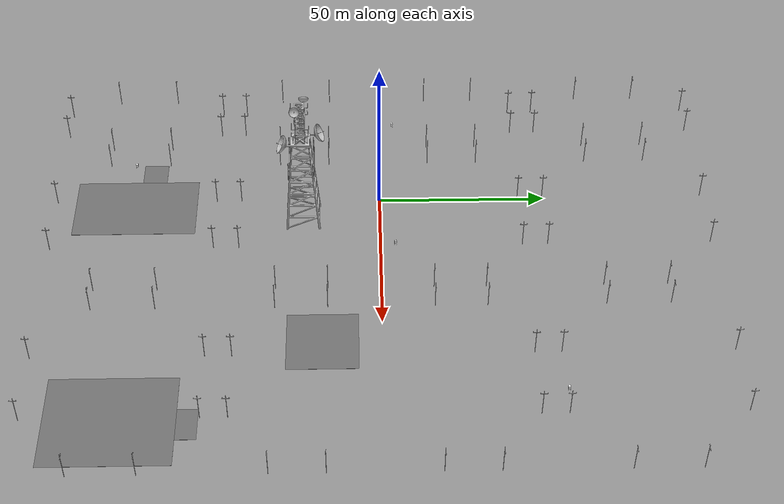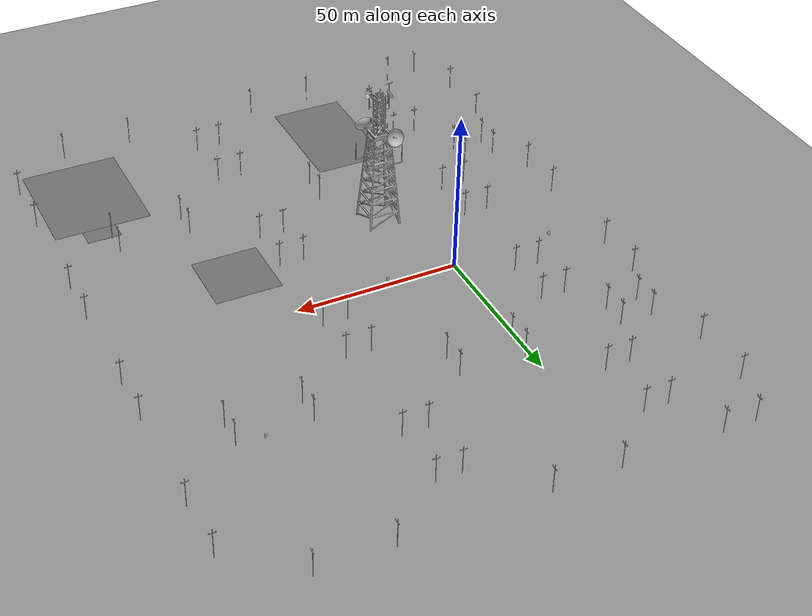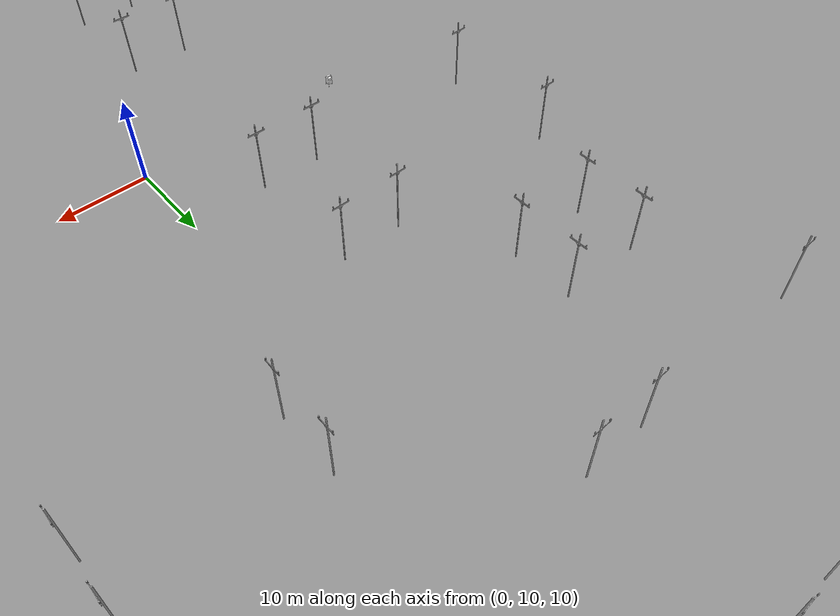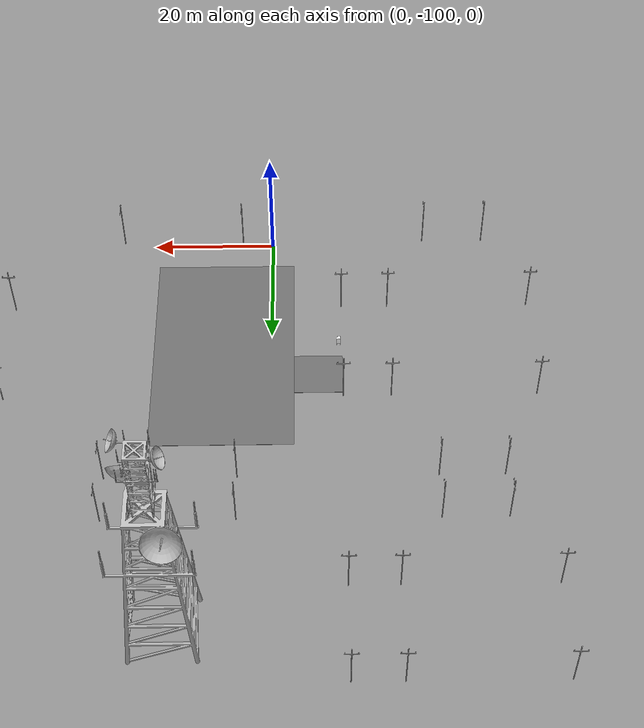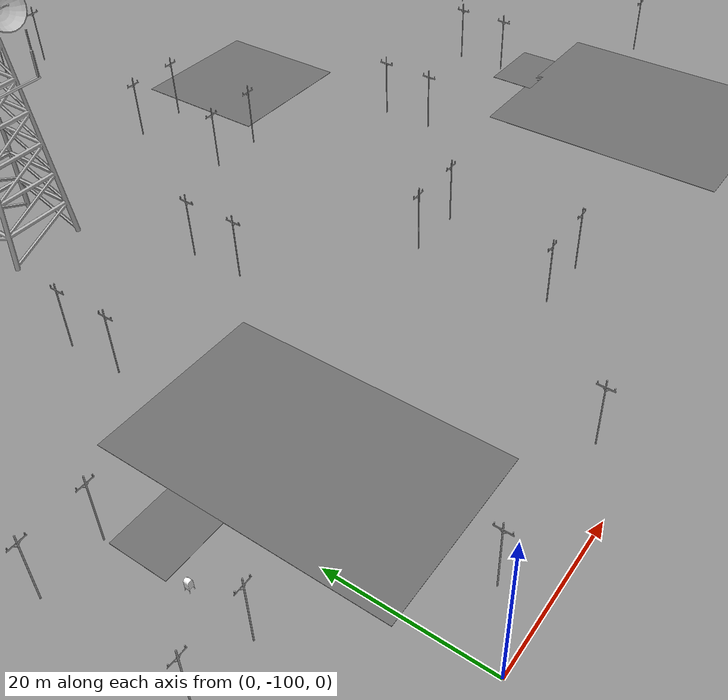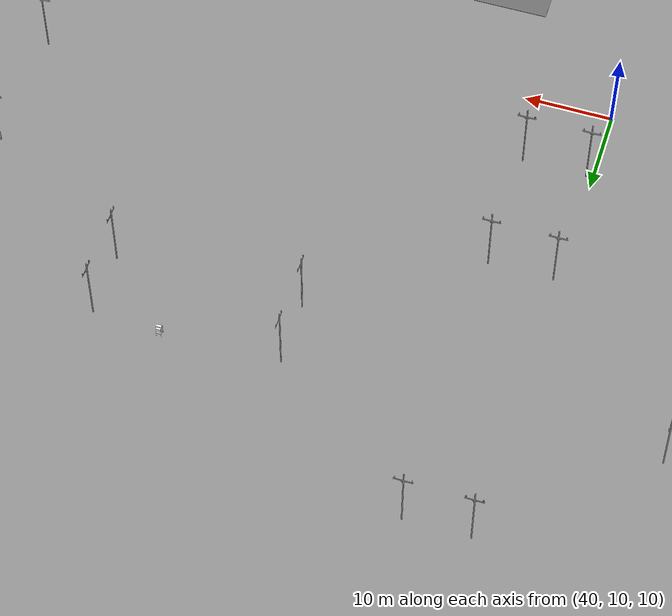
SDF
<sdf version="1.6">
 <world name="large_city">
  <plugin filename="gz-sim-physics-system" name="gz::sim::systems::Physics"/>
  <plugin filename="gz-sim-user-commands-system" name="gz::sim::systems::UserCommands"/>
  <plugin filename="gz-sim-scene-broadcaster-system" name="gz::sim::systems::SceneBroadcaster"/>
  <plugin filename="gz-sim-sensors-system" name="gz::sim::systems::Sensors">
   <render_engine>ogre2</render_engine>
  </plugin>
  <plugin filename="gz-sim-imu-system" name="gz::sim::systems::Imu"/>
  <scene>
   <grid>false</grid>
   <origin_visual>false</origin_visual>
   <ambient>0.46 0.47 0.48 1</ambient>
   <sky><clouds><speed>12</speed></clouds></sky>
   <background>0.64 0.70 0.76 1.0</background>
  </scene>
  <physics name="default_physics" default="0" type="ode">
   <max_step_size>0.002</max_step_size>
   <real_time_factor>1</real_time_factor>
   <real_time_update_rate>0</real_time_update_rate>
  </physics>
  <spherical_coordinates>
   <surface_model>EARTH_WGS84</surface_model>
   <latitude_deg>56.164520029</latitude_deg>
   <longitude_deg>10.1453534275</longitude_deg>
   <elevation>100.0</elevation>
   <heading_deg>0.0</heading_deg>
  </spherical_coordinates>
  <light type="directional" name="sun">
   <pose>0 0 1000 0 0 0</pose>
   <diffuse>0.92 0.90 0.84 1</diffuse>
   <specular>0.35 0.34 0.30 1</specular>
   <attenuation>
    <range>1000</range>
    <constant>0.9</constant>
    <linear>0.01</linear>
    <quadratic>0.001</quadratic>
   </attenuation>
   <direction>-0.42 0.16 -0.89</direction>
  </light>
  <model name="shaderbox">
   <pose>0 0 -5 0 0 0</pose>
   <static>true</static>
   <link name="link">
    <visual name="visual">
     <geometry><box><size>0.1 0.1 0.1</size></box></geometry>
     <material>
      <ambient>0.55 0.55 0.55 1.0</ambient>
      <diffuse>0.55 0.55 0.55 1.0</diffuse>
      <specular>0.12 0.12 0.12 1.0</specular>
     </material>
    </visual>
   </link>
  </model>
  <include>
   <static>true</static>
   <name>city_terrain_1</name>
   <pose>0
      0
      5.01
      0
      0
      0</pose>
   <uri>model://city_terrain</uri>
  </include>
  <include>
   <static>true</static>
   <name>postbox_129</name>
   <pose>80
      49.34
      5.16
      0
      0
      3.14</pose>
   <uri>model://postbox</uri>
  </include>
  <model name="asphalt_plane_138">
   <static>true</static>
   <pose>61.581
    -16.664
    5.01
    0
    0
    0</pose>
   <link name="link">
    <collision name="collision">
     <geometry><box><size>20
            20
            0.1</size></box></geometry>
    </collision>
    <visual name="visual">
     <geometry><box><size>20
            20
            0.05</size></box></geometry>
     <material>
      <ambient>0.42 0.42 0.42 1.0</ambient>
      <diffuse>0.42 0.42 0.42 1.0</diffuse>
      <specular>0.12 0.12 0.12 1.0</specular>
      <pbr>
       <metal>
        <albedo_map>model://asphalt_plane/materials/textures/tarmac.png</albedo_map>
        <roughness>0.85</roughness>
        <metalness>0.0</metalness>
       </metal>
      </pbr>
     </material>
    </visual>
   </link>
  </model>
  <model name="asphalt_plane_148">
   <static>true</static>
   <pose>88.62
    -72.49
    5.01
    0
    0
    0</pose>
   <link name="link">
    <collision name="collision">
     <geometry><box><size>29.378
            35.24
            0.1</size></box></geometry>
    </collision>
    <visual name="visual">
     <geometry><box><size>29.378
            35.24
            0.05</size></box></geometry>
     <material>
      <ambient>0.42 0.42 0.42 1.0</ambient>
      <diffuse>0.42 0.42 0.42 1.0</diffuse>
      <specular>0.12 0.12 0.12 1.0</specular>
      <pbr>
       <metal>
        <albedo_map>model://asphalt_plane/materials/textures/tarmac.png</albedo_map>
        <roughness>0.85</roughness>
        <metalness>0.0</metalness>
       </metal>
      </pbr>
     </material>
    </visual>
   </link>
  </model>
  <model name="asphalt_plane_149">
   <static>true</static>
   <pose>90.0
    -52.48
    5.01
    0
    0
    0</pose>
   <link name="link">
    <collision name="collision">
     <geometry><box><size>10.15
            6.61
            0.1</size></box></geometry>
    </collision>
    <visual name="visual">
     <geometry><box><size>10.15
            6.61
            0.05</size></box></geometry>
     <material>
      <ambient>0.42 0.42 0.42 1.0</ambient>
      <diffuse>0.42 0.42 0.42 1.0</diffuse>
      <specular>0.12 0.12 0.12 1.0</specular>
      <pbr>
       <metal>
        <albedo_map>model://asphalt_plane/materials/textures/tarmac.png</albedo_map>
        <roughness>0.85</roughness>
        <metalness>0.0</metalness>
       </metal>
      </pbr>
     </material>
    </visual>
   </link>
  </model>
  <include>
   <static>true</static>
   <name>postbox_269</name>
   <pose>24.0
      4.33
      5.16
      0
      0
      3.14</pose>
   <uri>model://postbox</uri>
  </include>
  <include>
   <static>true</static>
   <name>radio_tower_301</name>
   <pose>14.0
      -22.5
      6.5896564799999995
      0
      0
      0</pose>
   <uri>model://radio_tower</uri>
  </include>
  <model name="asphalt_plane_321">
   <static>true</static>
   <pose>7.4
    -72.69
    5.01
    0
    0
    0</pose>
   <link name="link">
    <collision name="collision">
     <geometry><box><size>22.248
            36.24
            0.1</size></box></geometry>
    </collision>
    <visual name="visual">
     <geometry><box><size>22.248
            36.24
            0.05</size></box></geometry>
     <material>
      <ambient>0.42 0.42 0.42 1.0</ambient>
      <diffuse>0.42 0.42 0.42 1.0</diffuse>
      <specular>0.12 0.12 0.12 1.0</specular>
      <pbr>
       <metal>
        <albedo_map>model://asphalt_plane/materials/textures/tarmac.png</albedo_map>
        <roughness>0.85</roughness>
        <metalness>0.0</metalness>
       </metal>
      </pbr>
     </material>
    </visual>
   </link>
  </model>
  <model name="asphalt_plane_322">
   <static>true</static>
   <pose>-7.51
    -67.99
    5.01
    0
    0
    0</pose>
   <link name="link">
    <collision name="collision">
     <geometry><box><size>7.63
            7.24
            0.1</size></box></geometry>
    </collision>
    <visual name="visual">
     <geometry><box><size>7.63
            7.24
            0.05</size></box></geometry>
     <material>
      <ambient>0.42 0.42 0.42 1.0</ambient>
      <diffuse>0.42 0.42 0.42 1.0</diffuse>
      <specular>0.12 0.12 0.12 1.0</specular>
      <pbr>
       <metal>
        <albedo_map>model://asphalt_plane/materials/textures/tarmac.png</albedo_map>
        <roughness>0.85</roughness>
        <metalness>0.0</metalness>
       </metal>
      </pbr>
     </material>
    </visual>
   </link>
  </model>
  <include>
   <static>true</static>
   <name>postbox_403</name>
   <pose>-10.76
      -74.02
      5.16
      0
      0
      1.57</pose>
   <uri>model://postbox</uri>
  </include>
  <include>
   <static>true</static>
   <name>postbox_409</name>
   <pose>-28.58
      4.33
      5.16
      0
      0
      3.14</pose>
   <uri>model://postbox</uri>
  </include>
  <include>
   <static>true</static>
   <name>telephone_pole_510</name>
   <pose>-41.3
      -81.85
      5.01
      0
      0
      3.14</pose>
   <uri>model://telephone_pole</uri>
  </include>
  <include>
   <static>true</static>
   <name>telephone_pole_511</name>
   <pose>-41.3
      -63.699999999999996
      5.01
      0
      0
      3.14</pose>
   <uri>model://telephone_pole</uri>
  </include>
  <include>
   <static>true</static>
   <name>telephone_pole_512</name>
   <pose>-11.3
      -81.85
      5.01
      0
      0
      3.14</pose>
   <uri>model://telephone_pole</uri>
  </include>
  <include>
   <static>true</static>
   <name>telephone_pole_513</name>
   <pose>-11.3
      -63.699999999999996
      5.01
      0
      0
      3.14</pose>
   <uri>model://telephone_pole</uri>
  </include>
  <include>
   <static>true</static>
   <name>telephone_pole_514</name>
   <pose>-18.7
      -81.85
      5.01
      0
      0
      3.14</pose>
   <uri>model://telephone_pole</uri>
  </include>
  <include>
   <static>true</static>
   <name>telephone_pole_515</name>
   <pose>-18.7
      -63.699999999999996
      5.01
      0
      0
      3.14</pose>
   <uri>model://telephone_pole</uri>
  </include>
  <include>
   <static>true</static>
   <name>telephone_pole_516</name>
   <pose>48.7
      -81.85
      5.01
      0
      0
      3.14</pose>
   <uri>model://telephone_pole</uri>
  </include>
  <include>
   <static>true</static>
   <name>telephone_pole_517</name>
   <pose>48.7
      -63.699999999999996
      5.01
      0
      0
      3.14</pose>
   <uri>model://telephone_pole</uri>
  </include>
  <include>
   <static>true</static>
   <name>telephone_pole_518</name>
   <pose>41.3
      -81.85
      5.01
      0
      0
      3.14</pose>
   <uri>model://telephone_pole</uri>
  </include>
  <include>
   <static>true</static>
   <name>telephone_pole_519</name>
   <pose>41.3
      -63.699999999999996
      5.01
      0
      0
      3.14</pose>
   <uri>model://telephone_pole</uri>
  </include>
  <include>
   <static>true</static>
   <name>telephone_pole_520</name>
   <pose>106.3
      -81.85
      5.01
      0
      0
      3.14</pose>
   <uri>model://telephone_pole</uri>
  </include>
  <include>
   <static>true</static>
   <name>telephone_pole_521</name>
   <pose>106.3
      -63.699999999999996
      5.01
      0
      0
      3.14</pose>
   <uri>model://telephone_pole</uri>
  </include>
  <include>
   <static>true</static>
   <name>telephone_pole_522</name>
   <pose>-41.3
      -30.15
      5.01
      0
      0
      3.14</pose>
   <uri>model://telephone_pole</uri>
  </include>
  <include>
   <static>true</static>
   <name>telephone_pole_523</name>
   <pose>-41.3
      -15.299999999999997
      5.01
      0
      0
      3.14</pose>
   <uri>model://telephone_pole</uri>
  </include>
  <include>
   <static>true</static>
   <name>telephone_pole_524</name>
   <pose>-11.3
      -30.15
      5.01
      0
      0
      3.14</pose>
   <uri>model://telephone_pole</uri>
  </include>
  <include>
   <static>true</static>
   <name>telephone_pole_525</name>
   <pose>-11.3
      -15.299999999999997
      5.01
      0
      0
      3.14</pose>
   <uri>model://telephone_pole</uri>
  </include>
  <include>
   <static>true</static>
   <name>telephone_pole_526</name>
   <pose>-18.7
      -30.15
      5.01
      0
      0
      3.14</pose>
   <uri>model://telephone_pole</uri>
  </include>
  <include>
   <static>true</static>
   <name>telephone_pole_527</name>
   <pose>-18.7
      -15.299999999999997
      5.01
      0
      0
      3.14</pose>
   <uri>model://telephone_pole</uri>
  </include>
  <include>
   <static>true</static>
   <name>telephone_pole_528</name>
   <pose>48.7
      -30.15
      5.01
      0
      0
      3.14</pose>
   <uri>model://telephone_pole</uri>
  </include>
  <include>
   <static>true</static>
   <name>telephone_pole_529</name>
   <pose>48.7
      -15.299999999999997
      5.01
      0
      0
      3.14</pose>
   <uri>model://telephone_pole</uri>
  </include>
  <include>
   <static>true</static>
   <name>telephone_pole_530</name>
   <pose>41.3
      -30.15
      5.01
      0
      0
      3.14</pose>
   <uri>model://telephone_pole</uri>
  </include>
  <include>
   <static>true</static>
   <name>telephone_pole_531</name>
   <pose>41.3
      -15.299999999999997
      5.01
      0
      0
      3.14</pose>
   <uri>model://telephone_pole</uri>
  </include>
  <include>
   <static>true</static>
   <name>telephone_pole_532</name>
   <pose>106.3
      -30.15
      5.01
      0
      0
      3.14</pose>
   <uri>model://telephone_pole</uri>
  </include>
  <include>
   <static>true</static>
   <name>telephone_pole_533</name>
   <pose>106.3
      -15.299999999999997
      5.01
      0
      0
      3.14</pose>
   <uri>model://telephone_pole</uri>
  </include>
  <include>
   <static>true</static>
   <name>telephone_pole_534</name>
   <pose>-41.3
      14.850000000000001
      5.01
      0
      0
      3.14</pose>
   <uri>model://telephone_pole</uri>
  </include>
  <include>
   <static>true</static>
   <name>telephone_pole_535</name>
   <pose>-41.3
      29.700000000000003
      5.01
      0
      0
      3.14</pose>
   <uri>model://telephone_pole</uri>
  </include>
  <include>
   <static>true</static>
   <name>telephone_pole_536</name>
   <pose>-11.3
      14.850000000000001
      5.01
      0
      0
      3.14</pose>
   <uri>model://telephone_pole</uri>
  </include>
  <include>
   <static>true</static>
   <name>telephone_pole_537</name>
   <pose>-11.3
      29.700000000000003
      5.01
      0
      0
      3.14</pose>
   <uri>model://telephone_pole</uri>
  </include>
  <include>
   <static>true</static>
   <name>telephone_pole_538</name>
   <pose>-18.7
      14.850000000000001
      5.01
      0
      0
      3.14</pose>
   <uri>model://telephone_pole</uri>
  </include>
  <include>
   <static>true</static>
   <name>telephone_pole_539</name>
   <pose>-18.7
      29.700000000000003
      5.01
      0
      0
      3.14</pose>
   <uri>model://telephone_pole</uri>
  </include>
  <include>
   <static>true</static>
   <name>telephone_pole_540</name>
   <pose>48.7
      14.850000000000001
      5.01
      0
      0
      3.14</pose>
   <uri>model://telephone_pole</uri>
  </include>
  <include>
   <static>true</static>
   <name>telephone_pole_541</name>
   <pose>48.7
      29.700000000000003
      5.01
      0
      0
      3.14</pose>
   <uri>model://telephone_pole</uri>
  </include>
  <include>
   <static>true</static>
   <name>telephone_pole_542</name>
   <pose>41.3
      14.850000000000001
      5.01
      0
      0
      3.14</pose>
   <uri>model://telephone_pole</uri>
  </include>
  <include>
   <static>true</static>
   <name>telephone_pole_543</name>
   <pose>41.3
      29.700000000000003
      5.01
      0
      0
      3.14</pose>
   <uri>model://telephone_pole</uri>
  </include>
  <include>
   <static>true</static>
   <name>telephone_pole_544</name>
   <pose>106.3
      14.850000000000001
      5.01
      0
      0
      3.14</pose>
   <uri>model://telephone_pole</uri>
  </include>
  <include>
   <static>true</static>
   <name>telephone_pole_545</name>
   <pose>106.3
      29.700000000000003
      5.01
      0
      0
      3.14</pose>
   <uri>model://telephone_pole</uri>
  </include>
  <include>
   <static>true</static>
   <name>telephone_pole_546</name>
   <pose>-41.3
      63.150000000000006
      5.01
      0
      0
      3.14</pose>
   <uri>model://telephone_pole</uri>
  </include>
  <include>
   <static>true</static>
   <name>telephone_pole_547</name>
   <pose>-41.3
      81.30000000000001
      5.01
      0
      0
      3.14</pose>
   <uri>model://telephone_pole</uri>
  </include>
  <include>
   <static>true</static>
   <name>telephone_pole_548</name>
   <pose>-11.3
      63.150000000000006
      5.01
      0
      0
      3.14</pose>
   <uri>model://telephone_pole</uri>
  </include>
  <include>
   <static>true</static>
   <name>telephone_pole_549</name>
   <pose>-11.3
      81.30000000000001
      5.01
      0
      0
      3.14</pose>
   <uri>model://telephone_pole</uri>
  </include>
  <include>
   <static>true</static>
   <name>telephone_pole_550</name>
   <pose>-18.7
      63.150000000000006
      5.01
      0
      0
      3.14</pose>
   <uri>model://telephone_pole</uri>
  </include>
  <include>
   <static>true</static>
   <name>telephone_pole_551</name>
   <pose>-18.7
      81.30000000000001
      5.01
      0
      0
      3.14</pose>
   <uri>model://telephone_pole</uri>
  </include>
  <include>
   <static>true</static>
   <name>telephone_pole_552</name>
   <pose>48.7
      63.150000000000006
      5.01
      0
      0
      3.14</pose>
   <uri>model://telephone_pole</uri>
  </include>
  <include>
   <static>true</static>
   <name>telephone_pole_553</name>
   <pose>48.7
      81.30000000000001
      5.01
      0
      0
      3.14</pose>
   <uri>model://telephone_pole</uri>
  </include>
  <include>
   <static>true</static>
   <name>telephone_pole_554</name>
   <pose>41.3
      63.150000000000006
      5.01
      0
      0
      3.14</pose>
   <uri>model://telephone_pole</uri>
  </include>
  <include>
   <static>true</static>
   <name>telephone_pole_555</name>
   <pose>41.3
      81.30000000000001
      5.01
      0
      0
      3.14</pose>
   <uri>model://telephone_pole</uri>
  </include>
  <include>
   <static>true</static>
   <name>telephone_pole_556</name>
   <pose>106.3
      63.150000000000006
      5.01
      0
      0
      3.14</pose>
   <uri>model://telephone_pole</uri>
  </include>
  <include>
   <static>true</static>
   <name>telephone_pole_557</name>
   <pose>106.3
      81.30000000000001
      5.01
      0
      0
      3.14</pose>
   <uri>model://telephone_pole</uri>
  </include>
  <include>
   <static>true</static>
   <name>telephone_pole_558</name>
   <pose>-35.1
      -96.3
      5.01
      0
      0
      1.57</pose>
   <uri>model://telephone_pole</uri>
  </include>
  <include>
   <static>true</static>
   <name>telephone_pole_559</name>
   <pose>-25.2
      -96.3
      5.01
      0
      0
      1.57</pose>
   <uri>model://telephone_pole</uri>
  </include>
  <include>
   <static>true</static>
   <name>telephone_pole_560</name>
   <pose>-35.1
      -41.3
      5.01
      0
      0
      1.57</pose>
   <uri>model://telephone_pole</uri>
  </include>
  <include>
   <static>true</static>
   <name>telephone_pole_561</name>
   <pose>-25.2
      -41.3
      5.01
      0
      0
      1.57</pose>
   <uri>model://telephone_pole</uri>
  </include>
  <include>
   <static>true</static>
   <name>telephone_pole_562</name>
   <pose>-35.1
      -48.7
      5.01
      0
      0
      1.57</pose>
   <uri>model://telephone_pole</uri>
  </include>
  <include>
   <static>true</static>
   <name>telephone_pole_563</name>
   <pose>-25.2
      -48.7
      5.01
      0
      0
      1.57</pose>
   <uri>model://telephone_pole</uri>
  </include>
  <include>
   <static>true</static>
   <name>telephone_pole_564</name>
   <pose>-35.1
      48.7
      5.01
      0
      0
      1.57</pose>
   <uri>model://telephone_pole</uri>
  </include>
  <include>
   <static>true</static>
   <name>telephone_pole_565</name>
   <pose>-25.2
      48.7
      5.01
      0
      0
      1.57</pose>
   <uri>model://telephone_pole</uri>
  </include>
  <include>
   <static>true</static>
   <name>telephone_pole_566</name>
   <pose>-35.1
      41.3
      5.01
      0
      0
      1.57</pose>
   <uri>model://telephone_pole</uri>
  </include>
  <include>
   <static>true</static>
   <name>telephone_pole_567</name>
   <pose>-25.2
      41.3
      5.01
      0
      0
      1.57</pose>
   <uri>model://telephone_pole</uri>
  </include>
  <include>
   <static>true</static>
   <name>telephone_pole_568</name>
   <pose>-35.1
      96.3
      5.01
      0
      0
      1.57</pose>
   <uri>model://telephone_pole</uri>
  </include>
  <include>
   <static>true</static>
   <name>telephone_pole_569</name>
   <pose>-25.2
      96.3
      5.01
      0
      0
      1.57</pose>
   <uri>model://telephone_pole</uri>
  </include>
  <include>
   <static>true</static>
   <name>telephone_pole_570</name>
   <pose>4.800000000000001
      -96.3
      5.01
      0
      0
      1.57</pose>
   <uri>model://telephone_pole</uri>
  </include>
  <include>
   <static>true</static>
   <name>telephone_pole_571</name>
   <pose>24.6
      -96.3
      5.01
      0
      0
      1.57</pose>
   <uri>model://telephone_pole</uri>
  </include>
  <include>
   <static>true</static>
   <name>telephone_pole_572</name>
   <pose>4.800000000000001
      -41.3
      5.01
      0
      0
      1.57</pose>
   <uri>model://telephone_pole</uri>
  </include>
  <include>
   <static>true</static>
   <name>telephone_pole_573</name>
   <pose>24.6
      -41.3
      5.01
      0
      0
      1.57</pose>
   <uri>model://telephone_pole</uri>
  </include>
  <include>
   <static>true</static>
   <name>telephone_pole_574</name>
   <pose>4.800000000000001
      -48.7
      5.01
      0
      0
      1.57</pose>
   <uri>model://telephone_pole</uri>
  </include>
  <include>
   <static>true</static>
   <name>telephone_pole_575</name>
   <pose>24.6
      -48.7
      5.01
      0
      0
      1.57</pose>
   <uri>model://telephone_pole</uri>
  </include>
  <include>
   <static>true</static>
   <name>telephone_pole_576</name>
   <pose>4.800000000000001
      48.7
      5.01
      0
      0
      1.57</pose>
   <uri>model://telephone_pole</uri>
  </include>
  <include>
   <static>true</static>
   <name>telephone_pole_577</name>
   <pose>24.6
      48.7
      5.01
      0
      0
      1.57</pose>
   <uri>model://telephone_pole</uri>
  </include>
  <include>
   <static>true</static>
   <name>telephone_pole_578</name>
   <pose>4.800000000000001
      41.3
      5.01
      0
      0
      1.57</pose>
   <uri>model://telephone_pole</uri>
  </include>
  <include>
   <static>true</static>
   <name>telephone_pole_579</name>
   <pose>24.6
      41.3
      5.01
      0
      0
      1.57</pose>
   <uri>model://telephone_pole</uri>
  </include>
  <include>
   <static>true</static>
   <name>telephone_pole_580</name>
   <pose>4.800000000000001
      96.3
      5.01
      0
      0
      1.57</pose>
   <uri>model://telephone_pole</uri>
  </include>
  <include>
   <static>true</static>
   <name>telephone_pole_581</name>
   <pose>24.6
      96.3
      5.01
      0
      0
      1.57</pose>
   <uri>model://telephone_pole</uri>
  </include>
  <include>
   <static>true</static>
   <name>telephone_pole_582</name>
   <pose>66.45
      -96.3
      5.01
      0
      0
      1.57</pose>
   <uri>model://telephone_pole</uri>
  </include>
  <include>
   <static>true</static>
   <name>telephone_pole_583</name>
   <pose>87.9
      -96.3
      5.01
      0
      0
      1.57</pose>
   <uri>model://telephone_pole</uri>
  </include>
  <include>
   <static>true</static>
   <name>telephone_pole_584</name>
   <pose>66.45
      -41.3
      5.01
      0
      0
      1.57</pose>
   <uri>model://telephone_pole</uri>
  </include>
  <include>
   <static>true</static>
   <name>telephone_pole_585</name>
   <pose>87.9
      -41.3
      5.01
      0
      0
      1.57</pose>
   <uri>model://telephone_pole</uri>
  </include>
  <include>
   <static>true</static>
   <name>telephone_pole_586</name>
   <pose>66.45
      -48.7
      5.01
      0
      0
      1.57</pose>
   <uri>model://telephone_pole</uri>
  </include>
  <include>
   <static>true</static>
   <name>telephone_pole_587</name>
   <pose>87.9
      -48.7
      5.01
      0
      0
      1.57</pose>
   <uri>model://telephone_pole</uri>
  </include>
  <include>
   <static>true</static>
   <name>telephone_pole_588</name>
   <pose>66.45
      48.7
      5.01
      0
      0
      1.57</pose>
   <uri>model://telephone_pole</uri>
  </include>
  <include>
   <static>true</static>
   <name>telephone_pole_589</name>
   <pose>87.9
      48.7
      5.01
      0
      0
      1.57</pose>
   <uri>model://telephone_pole</uri>
  </include>
  <include>
   <static>true</static>
   <name>telephone_pole_590</name>
   <pose>66.45
      41.3
      5.01
      0
      0
      1.57</pose>
   <uri>model://telephone_pole</uri>
  </include>
  <include>
   <static>true</static>
   <name>telephone_pole_591</name>
   <pose>87.9
      41.3
      5.01
      0
      0
      1.57</pose>
   <uri>model://telephone_pole</uri>
  </include>
  <include>
   <static>true</static>
   <name>telephone_pole_592</name>
   <pose>66.45
      96.3
      5.01
      0
      0
      1.57</pose>
   <uri>model://telephone_pole</uri>
  </include>
  <include>
   <static>true</static>
   <name>telephone_pole_593</name>
   <pose>87.9
      96.3
      5.01
      0
      0
      1.57</pose>
   <uri>model://telephone_pole</uri>
  </include>
 </world>
</sdf>

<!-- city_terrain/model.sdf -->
<sdf version="1.10">
  <model name="city_terrain">
    <static>true</static>
    <link name="link">

      <collision name="collision">
        <pose>40 -20 -0.05 0 0 0</pose>
        <geometry>
          <plane>
            <normal>0 0 1</normal>
            <size>500 500</size>
          </plane>
        </geometry>
        <surface>
          <contact>
            <ode>
              <kp>1e+06</kp>
              <kd>100</kd>
              <max_vel>1</max_vel>
              <min_depth>0</min_depth>
            </ode>
          </contact>
          <friction>
            <ode>
              <mu>100</mu>
              <mu2>50</mu2>
            </ode>
          </friction>

        </surface>
      </collision>

      <visual name="visual">
        <pose>40 -20 -0.02 0 0 0</pose>
        <geometry>
          <plane>
            <normal>0 0 1</normal>
            <size>500 500</size>
          </plane>
        </geometry>
        <material>
          <ambient>0.55 0.55 0.55 1.0</ambient>
          <diffuse>0.55 0.55 0.55 1.0</diffuse>
          <pbr>
            <metal>
              <albedo_map>model://city_terrain/materials/textures/city_terrain.jpg</albedo_map>
              <roughness>1.0</roughness>
              <metalness>0.0</metalness>
            </metal>
          </pbr>
        </material>
      </visual>

    </link>
  </model>
</sdf>

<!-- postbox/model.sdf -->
<sdf version="1.6">
  <model name="postbox">
    <static>true</static>
    <link name="link">
      <collision name="collision">
        <pose>0 0 0.75 0 0 0</pose>
        <geometry>
          <box>
            <size>0.7 0.5 1.5</size>
          </box>
        </geometry>
      </collision>
      <visual name="visual">
        <geometry>
          <mesh>
            <uri>model://postbox/meshes/postbox.dae</uri>
          </mesh>
        </geometry>
        <material>
          <ambient>1 1 1 1</ambient>
          <diffuse>1 1 1 1</diffuse>
          <pbr>
            <metal>
              <albedo_map>model://postbox/materials/textures/postbox_diffuse.jpg</albedo_map>
              <roughness>0.72</roughness>
              <metalness>0.0</metalness>
            </metal>
          </pbr>
        </material>
      </visual>
    </link>
  </model>
</sdf>

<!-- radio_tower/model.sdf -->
<sdf version="1.6">
  <model name="radio_tower">
    <static>true</static>
    <link name="link">
      <collision name="collision">
        <pose>0 0 22.5 0 0 0</pose>
        <geometry>
          <cylinder>
            <radius>0.5</radius>
            <length>45.0</length>
          </cylinder>
        </geometry>
      </collision>
      <visual name="visual">
        <geometry>
          <mesh>
            <uri>model://radio_tower/meshes/radio_tower.dae</uri>
          </mesh>
        </geometry>
      </visual>
    </link>
  </model>
</sdf>

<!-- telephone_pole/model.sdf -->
<sdf version="1.6">
  <model name="telephone_pole">
    <static>true</static>
    <link name="link">
      <collision name="collision_pole">
        <pose>0 0 4.572 0 0 0</pose>
        <geometry>
          <cylinder>
            <radius>0.07794752</radius>
            <length>9.144</length>
          </cylinder>
        </geometry>
      </collision>
      <visual name="visual">
        <geometry>
          <mesh>
            <uri>model://telephone_pole/meshes/telephone_pole.dae</uri>
          </mesh>
        </geometry>
      </visual>
    </link>
  </model>
</sdf>
